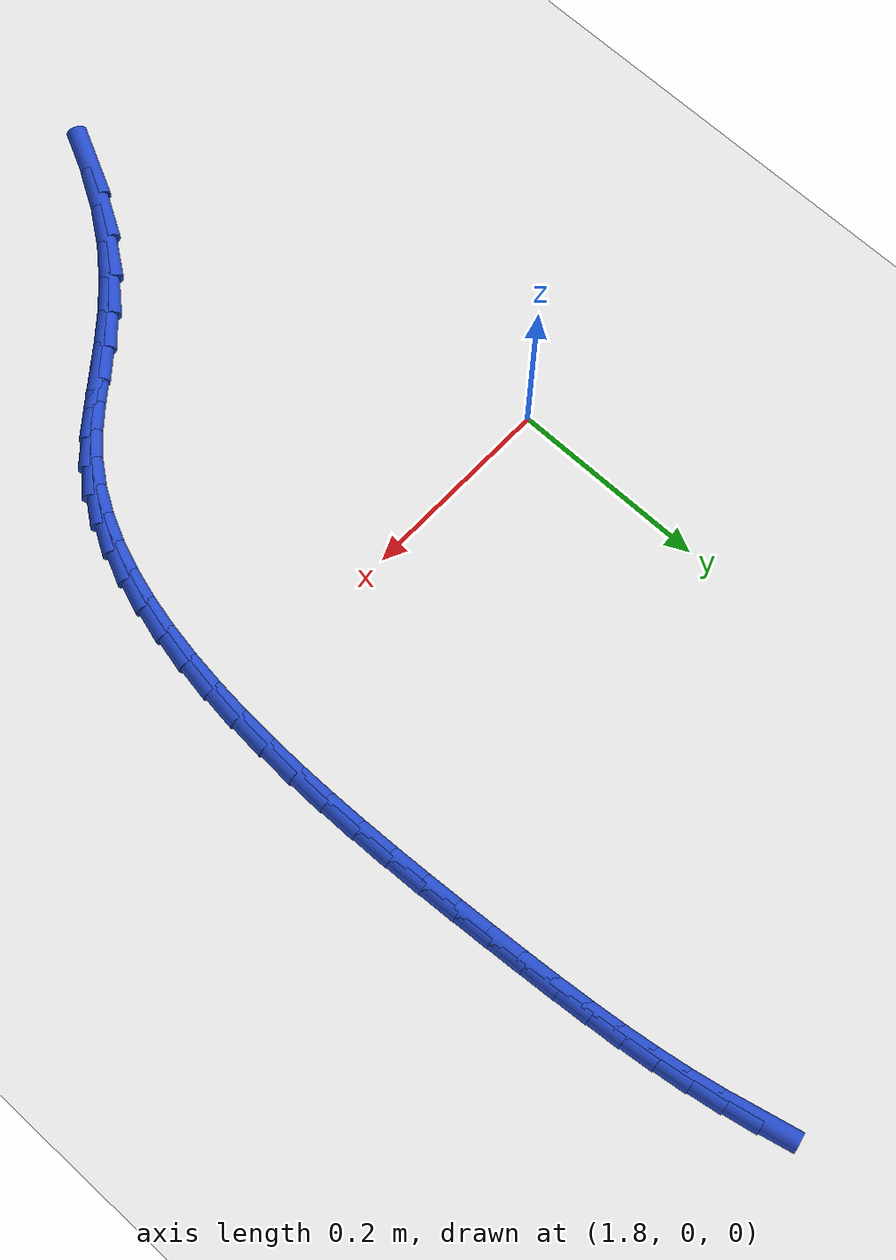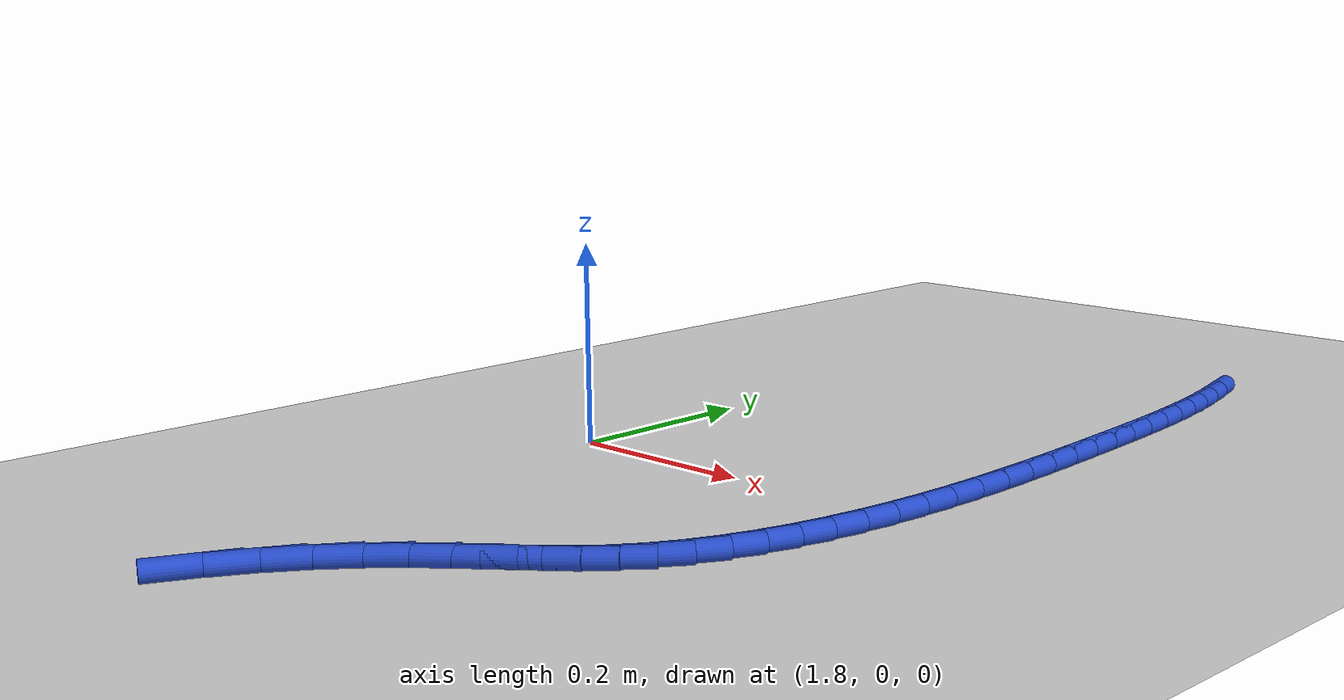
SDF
<sdf version="1.6">
 <world name="default">
  <model name="ground_plane">
   <static>1</static>
   <link name="link">
    <collision name="collision">
     <geometry><plane><normal>0 0 1</normal><size>100 100</size></plane></geometry>
     <surface><friction><ode><mu>100</mu><mu2>50</mu2></ode></friction></surface>
    </collision>
    <visual name="visual">
     <cast_shadows>0</cast_shadows>
     <geometry><plane><normal>0 0 1</normal><size>100 100</size></plane></geometry>
     <material>
      <script><uri>file://media/materials/scripts/gazebo.material</uri><name>Gazebo/WhiteGlow</name></script>
     </material>
    </visual>
   </link>
  </model>
  <model name="line">
   <link name="link_88">
    <pose>2.1626796936727 0.5878980743933724 0.01 0 1.57 -1.3380036714754295</pose>
    <collision name="collision">
     <geometry><cylinder><radius>0.01</radius><length>0.08</length></cylinder></geometry>
    </collision>
    <visual name="visual">
     <material>
      <script><name>Gazebo/Blue</name><uri>file://media/materials/scripts/gazebo.material</uri></script>
     </material>
     <geometry><cylinder><radius>0.01</radius><length>0.08</length></cylinder></geometry>
    </visual>
   </link>
   <link name="link_89">
    <pose>2.170517059966453 0.554841718475059 0.01 0 1.57 -1.3750265970453526</pose>
    <collision name="collision">
     <geometry><cylinder><radius>0.01</radius><length>0.08</length></cylinder></geometry>
    </collision>
    <visual name="visual">
     <material>
      <script><name>Gazebo/Blue</name><uri>file://media/materials/scripts/gazebo.material</uri></script>
     </material>
     <geometry><cylinder><radius>0.01</radius><length>0.08</length></cylinder></geometry>
    </visual>
   </link>
   <link name="link_90">
    <pose>2.17706247013378 0.5218357148972229 0.01 0 1.57 -1.4082585160414067</pose>
    <collision name="collision">
     <geometry><cylinder><radius>0.01</radius><length>0.08</length></cylinder></geometry>
    </collision>
    <visual name="visual">
     <material>
      <script><name>Gazebo/Blue</name><uri>file://media/materials/scripts/gazebo.material</uri></script>
     </material>
     <geometry><cylinder><radius>0.01</radius><length>0.08</length></cylinder></geometry>
    </visual>
   </link>
   <link name="link_91">
    <pose>2.1824898395984045 0.4887388578777305 0.01 0 1.57 -1.4370838006619846</pose>
    <collision name="collision">
     <geometry><cylinder><radius>0.01</radius><length>0.08</length></cylinder></geometry>
    </collision>
    <visual name="visual">
     <material>
      <script><name>Gazebo/Blue</name><uri>file://media/materials/scripts/gazebo.material</uri></script>
     </material>
     <geometry><cylinder><radius>0.01</radius><length>0.08</length></cylinder></geometry>
    </visual>
   </link>
   <link name="link_92">
    <pose>2.1869730837840486 0.455409941634448 0.01 0 1.57 -1.461066929354231</pose>
    <collision name="collision">
     <geometry><cylinder><radius>0.01</radius><length>0.08</length></cylinder></geometry>
    </collision>
    <visual name="visual">
     <material>
      <script><name>Gazebo/Blue</name><uri>file://media/materials/scripts/gazebo.material</uri></script>
     </material>
     <geometry><cylinder><radius>0.01</radius><length>0.08</length></cylinder></geometry>
    </visual>
   </link>
   <link name="link_93">
    <pose>2.1906861181144337 0.42170776038524194 0.01 0 1.57 -1.4799586085929375</pose>
    <collision name="collision">
     <geometry><cylinder><radius>0.01</radius><length>0.08</length></cylinder></geometry>
    </collision>
    <visual name="visual">
     <material>
      <script><name>Gazebo/Blue</name><uri>file://media/materials/scripts/gazebo.material</uri></script>
     </material>
     <geometry><cylinder><radius>0.01</radius><length>0.08</length></cylinder></geometry>
    </visual>
   </link>
   <link name="link_94">
    <pose>2.193802858013283 0.3874911083479787 0.01 0 1.57 -1.4936859459477716</pose>
    <collision name="collision">
     <geometry><cylinder><radius>0.01</radius><length>0.08</length></cylinder></geometry>
    </collision>
    <visual name="visual">
     <material>
      <script><name>Gazebo/Blue</name><uri>file://media/materials/scripts/gazebo.material</uri></script>
     </material>
     <geometry><cylinder><radius>0.01</radius><length>0.08</length></cylinder></geometry>
    </visual>
   </link>
   <link name="link_95">
    <pose>2.196497218904318 0.35261877974052375 0.01 0 1.57 -1.5023318325132182</pose>
    <collision name="collision">
     <geometry><cylinder><radius>0.01</radius><length>0.08</length></cylinder></geometry>
    </collision>
    <visual name="visual">
     <material>
      <script><name>Gazebo/Blue</name><uri>file://media/materials/scripts/gazebo.material</uri></script>
     </material>
     <geometry><cylinder><radius>0.01</radius><length>0.08</length></cylinder></geometry>
    </visual>
   </link>
   <link name="link_96">
    <pose>2.1989431162112623 0.31694956878074454 0.01 0 1.57 -1.5072648200816365</pose>
    <collision name="collision">
     <geometry><cylinder><radius>0.01</radius><length>0.08</length></cylinder></geometry>
    </collision>
    <visual name="visual">
     <material>
      <script><name>Gazebo/Blue</name><uri>file://media/materials/scripts/gazebo.material</uri></script>
     </material>
     <geometry><cylinder><radius>0.01</radius><length>0.08</length></cylinder></geometry>
    </visual>
   </link>
   <link name="link_97">
    <pose>2.201268753455321 0.28039278665780754 0.01 0 1.57 -1.5139351838840915</pose>
    <collision name="collision">
     <geometry><cylinder><radius>0.01</radius><length>0.08</length></cylinder></geometry>
    </collision>
    <visual name="visual">
     <material>
      <script><name>Gazebo/Blue</name><uri>file://media/materials/scripts/gazebo.material</uri></script>
     </material>
     <geometry><cylinder><radius>0.01</radius><length>0.08</length></cylinder></geometry>
    </visual>
   </link>
   <link name="link_98">
    <pose>2.2033921181648735 0.24309005769361652 0.01 0 1.57 -1.5238257526592154</pose>
    <collision name="collision">
     <geometry><cylinder><radius>0.01</radius><length>0.08</length></cylinder></geometry>
    </collision>
    <visual name="visual">
     <material>
      <script><name>Gazebo/Blue</name><uri>file://media/materials/scripts/gazebo.material</uri></script>
     </material>
     <geometry><cylinder><radius>0.01</radius><length>0.08</length></cylinder></geometry>
    </visual>
   </link>
   <link name="link_99">
    <pose>2.2051708076666308 0.2052497444099017 0.01 0 1.57 -1.5369705574347887</pose>
    <collision name="collision">
     <geometry><cylinder><radius>0.01</radius><length>0.08</length></cylinder></geometry>
    </collision>
    <visual name="visual">
     <material>
      <script><name>Gazebo/Blue</name><uri>file://media/materials/scripts/gazebo.material</uri></script>
     </material>
     <geometry><cylinder><radius>0.01</radius><length>0.08</length></cylinder></geometry>
    </visual>
   </link>
   <link name="link_100">
    <pose>2.2064624140083233 0.16708021516228122 0.01 0 1.57 -1.5535061013596176</pose>
    <collision name="collision">
     <geometry><cylinder><radius>0.01</radius><length>0.08</length></cylinder></geometry>
    </collision>
    <visual name="visual">
     <material>
      <script><name>Gazebo/Blue</name><uri>file://media/materials/scripts/gazebo.material</uri></script>
     </material>
     <geometry><cylinder><radius>0.01</radius><length>0.08</length></cylinder></geometry>
    </visual>
   </link>
   <link name="link_101">
    <pose>2.2071245292376798 0.1287898383063733 0.01 0 1.57 1.5679226271758129</pose>
    <collision name="collision">
     <geometry><cylinder><radius>0.01</radius><length>0.08</length></cylinder></geometry>
    </collision>
    <visual name="visual">
     <material>
      <script><name>Gazebo/Blue</name><uri>file://media/materials/scripts/gazebo.material</uri></script>
     </material>
     <geometry><cylinder><radius>0.01</radius><length>0.08</length></cylinder></geometry>
    </visual>
   </link>
   <link name="link_102">
    <pose>2.2070147454024287 0.09058698219779755 0.01 0 1.57 1.5437869959308528</pose>
    <collision name="collision">
     <geometry><cylinder><radius>0.01</radius><length>0.08</length></cylinder></geometry>
    </collision>
    <visual name="visual">
     <material>
      <script><name>Gazebo/Blue</name><uri>file://media/materials/scripts/gazebo.material</uri></script>
     </material>
     <geometry><cylinder><radius>0.01</radius><length>0.08</length></cylinder></geometry>
    </visual>
   </link>
   <link name="link_103">
    <pose>2.205990654550301 0.052680015192172185 0.01 0 1.57 1.5152211253144416</pose>
    <collision name="collision">
     <geometry><cylinder><radius>0.01</radius><length>0.08</length></cylinder></geometry>
    </collision>
    <visual name="visual">
     <material>
      <script><name>Gazebo/Blue</name><uri>file://media/materials/scripts/gazebo.material</uri></script>
     </material>
     <geometry><cylinder><radius>0.01</radius><length>0.08</length></cylinder></geometry>
    </visual>
   </link>
   <link name="link_104">
    <pose>2.2039098487290247 0.015277305645115952 0.01 0 1.57 1.4816378179910719</pose>
    <collision name="collision">
     <geometry><cylinder><radius>0.01</radius><length>0.08</length></cylinder></geometry>
    </collision>
    <visual name="visual">
     <material>
      <script><name>Gazebo/Blue</name><uri>file://media/materials/scripts/gazebo.material</uri></script>
     </material>
     <geometry><cylinder><radius>0.01</radius><length>0.08</length></cylinder></geometry>
    </visual>
   </link>
   <link name="link_105">
    <pose>2.20062991998633 -0.021412778087752524 0.01 0 1.57 1.4423055436874552</pose>
    <collision name="collision">
     <geometry><cylinder><radius>0.01</radius><length>0.08</length></cylinder></geometry>
    </collision>
    <visual name="visual">
     <material>
      <script><name>Gazebo/Blue</name><uri>file://media/materials/scripts/gazebo.material</uri></script>
     </material>
     <geometry><cylinder><radius>0.01</radius><length>0.08</length></cylinder></geometry>
    </visual>
   </link>
   <link name="link_106">
    <pose>2.196008460369947 -0.05718186765081544 0.01 0 1.57 1.3963339587537358</pose>
    <collision name="collision">
     <geometry><cylinder><radius>0.01</radius><length>0.08</length></cylinder></geometry>
    </collision>
    <visual name="visual">
     <material>
      <script><name>Gazebo/Blue</name><uri>file://media/materials/scripts/gazebo.material</uri></script>
     </material>
     <geometry><cylinder><radius>0.01</radius><length>0.08</length></cylinder></geometry>
    </visual>
   </link>
   <link name="link_107">
    <pose>2.1899030619276023 -0.0918215946884523 0.01 0 1.57 1.342667351882402</pose>
    <collision name="collision">
     <geometry><cylinder><radius>0.01</radius><length>0.08</length></cylinder></geometry>
    </collision>
    <visual name="visual">
     <material>
      <script><name>Gazebo/Blue</name><uri>file://media/materials/scripts/gazebo.material</uri></script>
     </material>
     <geometry><cylinder><radius>0.01</radius><length>0.08</length></cylinder></geometry>
    </visual>
   </link>
   <link name="link_108">
    <pose>2.182171316707029 -0.12512359084504535 0.01 0 1.57 1.2800986227710827</pose>
    <collision name="collision">
     <geometry><cylinder><radius>0.01</radius><length>0.08</length></cylinder></geometry>
    </collision>
    <visual name="visual">
     <material>
      <script><name>Gazebo/Blue</name><uri>file://media/materials/scripts/gazebo.material</uri></script>
     </material>
     <geometry><cylinder><radius>0.01</radius><length>0.08</length></cylinder></geometry>
    </visual>
   </link>
   <link name="link_109">
    <pose>2.1726708167559536 -0.15687948776497584 0.01 0 1.57 1.207325490943861</pose>
    <collision name="collision">
     <geometry><cylinder><radius>0.01</radius><length>0.08</length></cylinder></geometry>
    </collision>
    <visual name="visual">
     <material>
      <script><name>Gazebo/Blue</name><uri>file://media/materials/scripts/gazebo.material</uri></script>
     </material>
     <geometry><cylinder><radius>0.01</radius><length>0.08</length></cylinder></geometry>
    </visual>
   </link>
   <link name="link_110">
    <pose>2.1612591541221073 -0.1868809170926252 0.01 0 1.57 1.1230819146506503</pose>
    <collision name="collision">
     <geometry><cylinder><radius>0.01</radius><length>0.08</length></cylinder></geometry>
    </collision>
    <visual name="visual">
     <material>
      <script><name>Gazebo/Blue</name><uri>file://media/materials/scripts/gazebo.material</uri></script>
     </material>
     <geometry><cylinder><radius>0.01</radius><length>0.08</length></cylinder></geometry>
    </visual>
   </link>
   <link name="link_111">
    <pose>2.1477939208532186 -0.21491951047237468 0.01 0 1.57 1.0263847326391013</pose>
    <collision name="collision">
     <geometry><cylinder><radius>0.01</radius><length>0.08</length></cylinder></geometry>
    </collision>
    <visual name="visual">
     <material>
      <script><name>Gazebo/Blue</name><uri>file://media/materials/scripts/gazebo.material</uri></script>
     </material>
     <geometry><cylinder><radius>0.01</radius><length>0.08</length></cylinder></geometry>
    </visual>
   </link>
   <link name="link_112">
    <pose>2.1321327089970166 -0.24078689954860616 0.01 0 1.57 0.9169208440060217</pose>
    <collision name="collision">
     <geometry><cylinder><radius>0.01</radius><length>0.08</length></cylinder></geometry>
    </collision>
    <visual name="visual">
     <material>
      <script><name>Gazebo/Blue</name><uri>file://media/materials/scripts/gazebo.material</uri></script>
     </material>
     <geometry><cylinder><radius>0.01</radius><length>0.08</length></cylinder></geometry>
    </visual>
   </link>
   <link name="link_113">
    <pose>2.1141331106012315 -0.26427471596569974 0.01 0 1.57 0.7996492730464206</pose>
    <collision name="collision">
     <geometry><cylinder><radius>0.01</radius><length>0.08</length></cylinder></geometry>
    </collision>
    <visual name="visual">
     <material>
      <script><name>Gazebo/Blue</name><uri>file://media/materials/scripts/gazebo.material</uri></script>
     </material>
     <geometry><cylinder><radius>0.01</radius><length>0.08</length></cylinder></geometry>
    </visual>
   </link>
   <link name="link_114">
    <pose>2.093702951273059 -0.2852956392107946 0.01 0 1.57 0.7092954649554182</pose>
    <collision name="collision">
     <geometry><cylinder><radius>0.01</radius><length>0.08</length></cylinder></geometry>
    </collision>
    <visual name="visual">
     <material>
      <script><name>Gazebo/Blue</name><uri>file://media/materials/scripts/gazebo.material</uri></script>
     </material>
     <geometry><cylinder><radius>0.01</radius><length>0.08</length></cylinder></geometry>
    </visual>
   </link>
   <link name="link_115">
    <pose>2.071127614231733 -0.30467214960814976 0.01 0 1.57 0.6635248765966377</pose>
    <collision name="collision">
     <geometry><cylinder><radius>0.01</radius><length>0.08</length></cylinder></geometry>
    </collision>
    <visual name="visual">
     <material>
      <script><name>Gazebo/Blue</name><uri>file://media/materials/scripts/gazebo.material</uri></script>
     </material>
     <geometry><cylinder><radius>0.01</radius><length>0.08</length></cylinder></geometry>
    </visual>
   </link>
   <link name="link_116">
    <pose>2.046864202257135 -0.3236405202252862 0.01 0 1.57 0.660316764428562</pose>
    <collision name="collision">
     <geometry><cylinder><radius>0.01</radius><length>0.08</length></cylinder></geometry>
    </collision>
    <visual name="visual">
     <material>
      <script><name>Gazebo/Blue</name><uri>file://media/materials/scripts/gazebo.material</uri></script>
     </material>
     <geometry><cylinder><radius>0.01</radius><length>0.08</length></cylinder></geometry>
    </visual>
   </link>
   <link name="link_117">
    <pose>2.021370683103675 -0.3434391084594466 0.01 0 1.57 0.6942688141698165</pose>
    <collision name="collision">
     <geometry><cylinder><radius>0.01</radius><length>0.08</length></cylinder></geometry>
    </collision>
    <visual name="visual">
     <material>
      <script><name>Gazebo/Blue</name><uri>file://media/materials/scripts/gazebo.material</uri></script>
     </material>
     <geometry><cylinder><radius>0.01</radius><length>0.08</length></cylinder></geometry>
    </visual>
   </link>
   <link name="link_118">
    <pose>1.9951050245257649 -0.36530627170787316 0.01 0 1.57 0.7582429473609295</pose>
    <collision name="collision">
     <geometry><cylinder><radius>0.01</radius><length>0.08</length></cylinder></geometry>
    </collision>
    <visual name="visual">
     <material>
      <script><name>Gazebo/Blue</name><uri>file://media/materials/scripts/gazebo.material</uri></script>
     </material>
     <geometry><cylinder><radius>0.01</radius><length>0.08</length></cylinder></geometry>
    </visual>
   </link>
   <link name="link_119">
    <pose>1.9685251942778148 -0.3904803673678091 0.01 0 1.57 0.8438006732129509</pose>
    <collision name="collision">
     <geometry><cylinder><radius>0.01</radius><length>0.08</length></cylinder></geometry>
    </collision>
    <visual name="visual">
     <material>
      <script><name>Gazebo/Blue</name><uri>file://media/materials/scripts/gazebo.material</uri></script>
     </material>
     <geometry><cylinder><radius>0.01</radius><length>0.08</length></cylinder></geometry>
    </visual>
   </link>
   <link name="link_120">
    <pose>1.9420891601142376 -0.42019975283649585 0.01 0 1.57 0.941739462485774</pose>
    <collision name="collision">
     <geometry><cylinder><radius>0.01</radius><length>0.08</length></cylinder></geometry>
    </collision>
    <visual name="visual">
     <material>
      <script><name>Gazebo/Blue</name><uri>file://media/materials/scripts/gazebo.material</uri></script>
     </material>
     <geometry><cylinder><radius>0.01</radius><length>0.08</length></cylinder></geometry>
    </visual>
   </link>
   <link name="link_121">
    <pose>1.916254861917452 -0.45570246058102076 0.01 0 1.57 1.0361293321232827</pose>
    <collision name="collision">
     <geometry><cylinder><radius>0.01</radius><length>0.08</length></cylinder></geometry>
    </collision>
    <visual name="visual">
     <material>
      <script><name>Gazebo/Blue</name><uri>file://media/materials/scripts/gazebo.material</uri></script>
     </material>
     <geometry><cylinder><radius>0.01</radius><length>0.08</length></cylinder></geometry>
    </visual>
   </link>
   <link name="link_122">
    <pose>1.8914285848132988 -0.49762433475462203 0.01 0 1.57 1.1070222663736564</pose>
    <collision name="collision">
     <geometry><cylinder><radius>0.01</radius><length>0.08</length></cylinder></geometry>
    </collision>
    <visual name="visual">
     <material>
      <script><name>Gazebo/Blue</name><uri>file://media/materials/scripts/gazebo.material</uri></script>
     </material>
     <geometry><cylinder><radius>0.01</radius><length>0.08</length></cylinder></geometry>
    </visual>
   </link>
  </model>
 </world>
</sdf>
